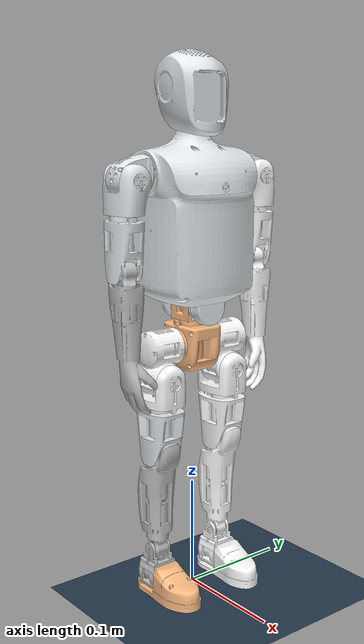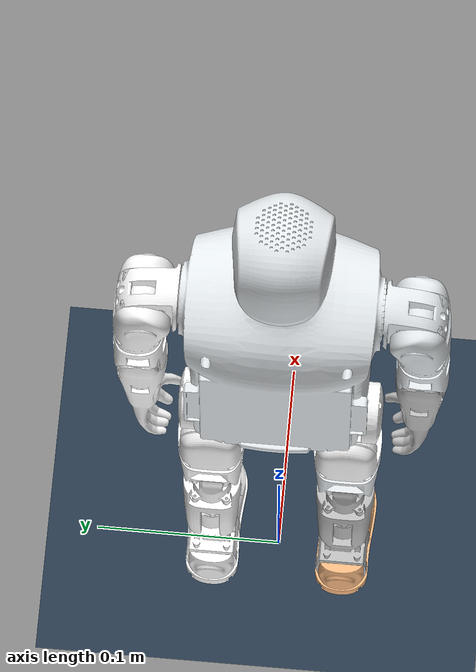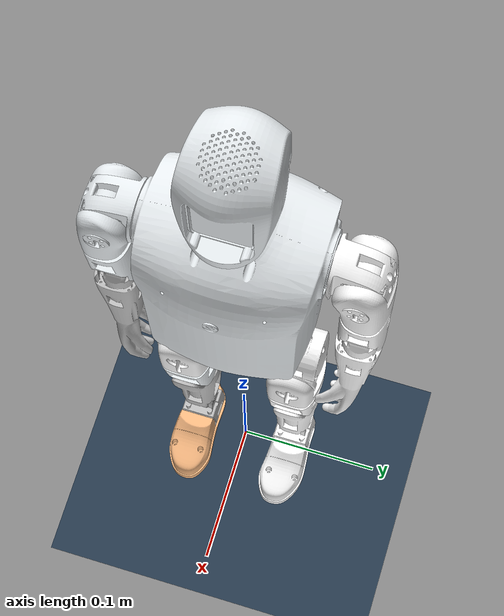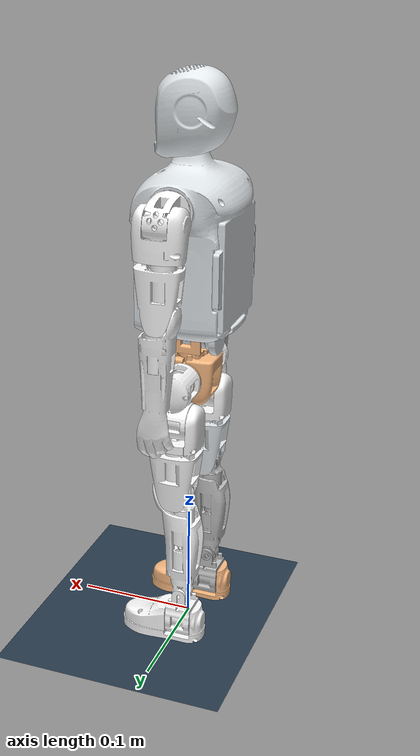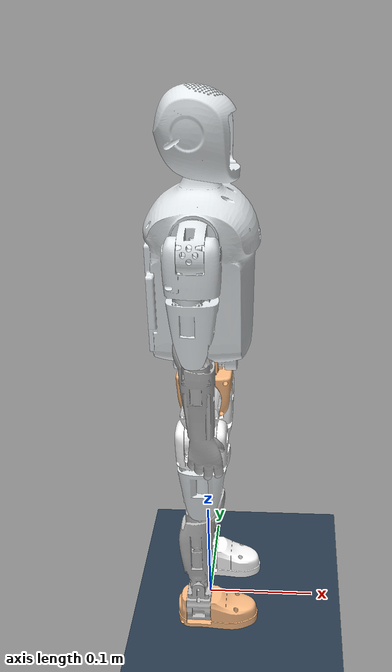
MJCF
<mujoco model="g0_mujoco">
    <compiler angle="radian" autolimits="true" eulerseq="zyx"/>
    <option timestep='0.002' iterations='50' solver='PGS' gravity='0 0 -9.81'>
    <flag frictionloss="enable"/>
    </option>
    <size njmax="500" nconmax="100" />

    <visual>
        <quality shadowsize='4096'/>
        <map znear='0.05'/>
    </visual>
    <default>
        <joint limited='true'/>
        <motor ctrllimited='true'/>
        <geom  condim='4' contype="2" conaffinity="1" solref='0.02 1' friction='0.9 0.2 0.2'/>
        <equality solref='0.02 1'/>
        <default class='joint_param'>
            <joint  damping="0.0002" frictionloss="0.001" armature="0.0015"/>
        </default>
    </default>
  <statistic meansize="0.164352" extent="1.07561" center="-0.00820016 -1.48012e-05 -0.160784"/>

  <asset>
    <texture name="texplane" type="2d" builtin="checker" rgb1="0.2 0.3 0.4" rgb2="0.1 0.15 0.2" width="512" height="512"/>
    <material name="matplane" texture="texplane" texrepeat="1 1" texuniform="true" reflectance="0.2"/>
    <mesh name="base_link" content_type="model/stl" file="/home/lz/g0_robot_lab/g0_robot_lab/source/g0_robot_lab/g0_robot_lab/assets/robots/g0/meshes/base_link.STL"/>
    <mesh name="waist_yaw_link" content_type="model/stl" file="/home/lz/g0_robot_lab/g0_robot_lab/source/g0_robot_lab/g0_robot_lab/assets/robots/g0/meshes/waist_yaw_link.STL"/>
    <mesh name="torso_link" content_type="model/stl" file="/home/lz/g0_robot_lab/g0_robot_lab/source/g0_robot_lab/g0_robot_lab/assets/robots/g0/meshes/torso_link.STL"/>
    <mesh name="l_shoulder_pitch_link" content_type="model/stl" file="/home/lz/g0_robot_lab/g0_robot_lab/source/g0_robot_lab/g0_robot_lab/assets/robots/g0/meshes/l_shoulder_pitch_link.STL"/>
    <mesh name="l_shoulder_roll_link" content_type="model/stl" file="/home/lz/g0_robot_lab/g0_robot_lab/source/g0_robot_lab/g0_robot_lab/assets/robots/g0/meshes/l_shoulder_roll_link.STL"/>
    <mesh name="l_shoulder_yaw_link" content_type="model/stl" file="/home/lz/g0_robot_lab/g0_robot_lab/source/g0_robot_lab/g0_robot_lab/assets/robots/g0/meshes/l_shoulder_yaw_link.STL"/>
    <mesh name="l_forearm_link" content_type="model/stl" file="/home/lz/g0_robot_lab/g0_robot_lab/source/g0_robot_lab/g0_robot_lab/assets/robots/g0/meshes/l_forearm_link.STL"/>
    <mesh name="r_shoulder_pitch_link" content_type="model/stl" file="/home/lz/g0_robot_lab/g0_robot_lab/source/g0_robot_lab/g0_robot_lab/assets/robots/g0/meshes/r_shoulder_pitch_link.STL"/>
    <mesh name="r_shoulder_roll_link" content_type="model/stl" file="/home/lz/g0_robot_lab/g0_robot_lab/source/g0_robot_lab/g0_robot_lab/assets/robots/g0/meshes/r_shoulder_roll_link.STL"/>
    <mesh name="r_shoulder_yaw_link" content_type="model/stl" file="/home/lz/g0_robot_lab/g0_robot_lab/source/g0_robot_lab/g0_robot_lab/assets/robots/g0/meshes/r_shoulder_yaw_link.STL"/>
    <mesh name="r_forearm_link" content_type="model/stl" file="/home/lz/g0_robot_lab/g0_robot_lab/source/g0_robot_lab/g0_robot_lab/assets/robots/g0/meshes/r_forearm_link.STL"/>
    <mesh name="l_hip_pitch_link" content_type="model/stl" file="/home/lz/g0_robot_lab/g0_robot_lab/source/g0_robot_lab/g0_robot_lab/assets/robots/g0/meshes/l_hip_pitch_link.STL"/>
    <mesh name="l_hip_roll_link" content_type="model/stl" file="/home/lz/g0_robot_lab/g0_robot_lab/source/g0_robot_lab/g0_robot_lab/assets/robots/g0/meshes/l_hip_roll_link.STL"/>
    <mesh name="l_thigh_link" content_type="model/stl" file="/home/lz/g0_robot_lab/g0_robot_lab/source/g0_robot_lab/g0_robot_lab/assets/robots/g0/meshes/l_thigh_link.STL"/>
    <mesh name="l_calf_link" content_type="model/stl" file="/home/lz/g0_robot_lab/g0_robot_lab/source/g0_robot_lab/g0_robot_lab/assets/robots/g0/meshes/l_calf_link.STL"/>
    <mesh name="l_ankle_pitch_link" content_type="model/stl" file="/home/lz/g0_robot_lab/g0_robot_lab/source/g0_robot_lab/g0_robot_lab/assets/robots/g0/meshes/l_ankle_pitch_link.STL"/>
    <mesh name="l_foot_link" content_type="model/stl" file="/home/lz/g0_robot_lab/g0_robot_lab/source/g0_robot_lab/g0_robot_lab/assets/robots/g0/meshes/l_foot_link.STL"/>
    <mesh name="r_hip_pitch_link" content_type="model/stl" file="/home/lz/g0_robot_lab/g0_robot_lab/source/g0_robot_lab/g0_robot_lab/assets/robots/g0/meshes/r_hip_pitch_link.STL"/>
    <mesh name="r_hip_roll_link" content_type="model/stl" file="/home/lz/g0_robot_lab/g0_robot_lab/source/g0_robot_lab/g0_robot_lab/assets/robots/g0/meshes/r_hip_roll_link.STL"/>
    <mesh name="r_thigh_link" content_type="model/stl" file="/home/lz/g0_robot_lab/g0_robot_lab/source/g0_robot_lab/g0_robot_lab/assets/robots/g0/meshes/r_thigh_link.STL"/>
    <mesh name="r_calf_link" content_type="model/stl" file="/home/lz/g0_robot_lab/g0_robot_lab/source/g0_robot_lab/g0_robot_lab/assets/robots/g0/meshes/r_calf_link.STL"/>
    <mesh name="r_ankle_pitch_link" content_type="model/stl" file="/home/lz/g0_robot_lab/g0_robot_lab/source/g0_robot_lab/g0_robot_lab/assets/robots/g0/meshes/r_ankle_pitch_link.STL"/>
    <mesh name="r_foot_link" content_type="model/stl" file="/home/lz/g0_robot_lab/g0_robot_lab/source/g0_robot_lab/g0_robot_lab/assets/robots/g0/meshes/r_foot_link.STL"/>
  </asset>

  <worldbody>
    <light directional="true" diffuse=".4 .4 .4" specular="0.1 0.1 0.1" pos="0 0 5.0" dir="0 0 -1" castshadow="false"/>
    <light directional="true" diffuse=".6 .6 .6" specular="0.2 0.2 0.2" pos="0 0 4" dir="0 0 -1"/>
    <geom name="ground" type="plane" size="0 0 1" pos="0.001 0 0" quat="1 0 0 0" material="matplane" condim="1" contype="1" conaffinity="2"/>
    <body name="base_link" pos='0 0 0.233'>
      <inertial pos="-1.2518e-05 0.00025287 -0.0020895" quat="0.502505 0.497486 0.497248 0.502734" mass="0.033536" diaginertia="1.1303e-05 6.75499e-06 5.91031e-06"/>
      <joint name="floating_base_joint" type="free"/>
      <site name='imu' size='0.01' pos='0.0 0 0.0' quat='1 0 0 0'/>
      <geom type="mesh" rgba="0.98824 0.73725 0.51765 1" mesh="base_link"/>
      <body name="waist_yaw_link">
        <inertial pos="3.1706e-05 -7.3869e-07 0.0065459" quat="0.999999 0.000574413 0.000872276 0.000145392" mass="0.035286" diaginertia="4.65161e-06 4.4014e-06 2.32349e-06"/>
        <joint name="waist_yaw_joint" pos="0 0 0" axis="0 0 1" limited="true" range="-1.2 1.2" class="joint_param" actuatorfrclimited="true" actuatorfrcrange="-2 2"/>
        <geom type="mesh" contype="0" conaffinity="0" group="1" density="0" rgba="0.98824 0.73725 0.51765 1" mesh="waist_yaw_link"/>
        <geom type="mesh" rgba="0.98824 0.73725 0.51765 1" mesh="waist_yaw_link"/>
        <body name="torso_link" pos="0.01995 -1.3874e-05 0.033929">
          <inertial pos="-0.024893 -2.0775e-05 0.072618" quat="0.999893 0.00500982 0.0137285 -0.000315872" mass="0.50948" diaginertia="0.000634052 0.000401479 0.000313429"/>
          <joint name="waist_roll_joint" pos="0 0 0" axis="1 0 0" limited="true" range="-0.5 0.5" class="joint_param" actuatorfrclimited="true" actuatorfrcrange="-2 2"/>
          <geom type="mesh" contype="0" conaffinity="0" group="1" density="0" rgba="0.89804 0.91765 0.92941 1" mesh="torso_link"/>
          <geom type="mesh" rgba="0.89804 0.91765 0.92941 1" mesh="torso_link"/>
          <body name="l_shoulder_pitch_link" pos="-0.019982 0.049803 0.11706">
            <inertial pos="0.00010002 -0.011181 -0.00021086" quat="0.688632 0.725095 0.00371701 -0.00294441" mass="0.037971" diaginertia="5.23075e-06 4.74163e-06 2.72023e-06"/>
            <joint name="l_shoulder_pitch_joint" pos="0 0 0" axis="0 1 0" limited="true" range="-1.2 1.2" class="joint_param" actuatorfrclimited="true" actuatorfrcrange="-2 2"/>
            <geom type="mesh" contype="0" conaffinity="0" group="1" density="0" rgba="1 1 1 1" mesh="l_shoulder_pitch_link"/>
            <geom type="mesh" rgba="1 1 1 1" mesh="l_shoulder_pitch_link"/>
            <body name="l_shoulder_roll_link" pos="0.017974 0.018741 -0.0053332">
              <inertial pos="-0.017467 0.0007259 -0.0047307" quat="0.472894 0.480229 0.642921 0.363874" mass="0.046789" diaginertia="6.6731e-06 5.99448e-06 4.15802e-06"/>
              <joint name="l_shoulder_roll_joint" pos="0 0 0" axis="1 0 0" limited="true" range="0 1.2" class="joint_param" actuatorfrclimited="true" actuatorfrcrange="-2 2"/>
              <geom type="mesh" contype="0" conaffinity="0" group="1" density="0" rgba="1 1 1 1" mesh="l_shoulder_roll_link"/>
              <geom type="mesh" rgba="1 1 1 1" mesh="l_shoulder_roll_link"/>
              <body name="l_shoulder_yaw_link" pos="-0.020466 0.0030129 -0.023567">
                <inertial pos="0.00139018 5.66678e-05 -0.0213976" quat="0.68793 -0.0260079 -0.0233469 0.724935" mass="0.0424984" diaginertia="6.90285e-06 6.65682e-06 3.64122e-06"/>
                <joint name="l_shoulder_yaw_joint" pos="0 0 0" axis="0 0 1" limited="true" range="-1.2 1.2" class="joint_param" actuatorfrclimited="true" actuatorfrcrange="-2 2"/>
                <geom type="mesh" contype="0" conaffinity="0" group="1" density="0" rgba="1 1 1 1" mesh="l_shoulder_yaw_link"/>
                <geom type="mesh" rgba="1 1 1 1" mesh="l_shoulder_yaw_link"/>
                <body name="l_forearm_link" pos="0.00450103 -0.00929168 -0.05105">
                  <inertial pos="0.00093881 0.008898 -0.054115" quat="0.626362 0.0722765 0.0506894 0.774518" mass="0.030632" diaginertia="1.1154e-05 1.05719e-05 2.3749e-06"/>
                  <joint name="l_elbow_pitch_joint" pos="0 0 0" axis="0 1 0" limited="true" range="-1.2 0" class="joint_param" armature="0.002041666667" actuatorfrclimited="true" actuatorfrcrange="-2 2"/>
                  <geom type="mesh" contype="0" conaffinity="0" group="1" density="0" rgba="1 1 1 1" mesh="l_forearm_link"/>
                  <geom type="mesh" rgba="1 1 1 1" mesh="l_forearm_link"/>
                </body>
              </body>
            </body>
          </body>
          <body name="r_shoulder_pitch_link" pos="-0.0199821 -0.0497753 0.117056">
            <inertial pos="0.00010006 0.0111805 -0.000210872" quat="0.725096 0.688632 0.00295105 -0.00372069" mass="0.037971" diaginertia="5.23079e-06 4.74164e-06 2.72019e-06"/>
            <joint name="r_shoulder_pitch_joint" pos="0 0 0" axis="0 1 0" limited="true" range="-1.2 1.2" class="joint_param" actuatorfrclimited="true" actuatorfrcrange="-2 2"/>
            <geom type="mesh" contype="0" conaffinity="0" group="1" density="0" rgba="0.898039 0.917647 0.929412 1" mesh="r_shoulder_pitch_link"/>
            <geom type="mesh" rgba="0.898039 0.917647 0.929412 1" mesh="r_shoulder_pitch_link"/>
            <body name="r_shoulder_roll_link" pos="0.017974 -0.018741 -0.0053332">
              <inertial pos="-0.0176331 -0.00192776 -0.0130575" quat="0.702081 0.712054 -0.00516146 0.00585193" mass="0.0467895" diaginertia="1.78921e-05 1.73927e-05 3.06014e-06"/>
              <joint name="r_shoulder_roll_joint" pos="0 0 0" axis="1 0 0" limited="true" range="-1.2 0" class="joint_param" actuatorfrclimited="true" actuatorfrcrange="-2 2"/>
              <geom type="mesh" contype="0" conaffinity="0" group="1" density="0" rgba="0.898039 0.917647 0.929412 1" mesh="r_shoulder_roll_link"/>
              <geom type="mesh" rgba="0.898039 0.917647 0.929412 1" mesh="r_shoulder_roll_link"/>
              <body name="r_shoulder_yaw_link" pos="-0.0204659 -0.00301291 -0.0235668">
                <inertial pos="0.00138989 -5.65824e-05 -0.0213978" quat="0.725129 -0.0233298 -0.0260358 0.687725" mass="0.0424982" diaginertia="6.90281e-06 6.65681e-06 3.64111e-06"/>
                <joint name="r_shoulder_yaw_joint" pos="0 0 0" axis="0 0 1" limited="true" range="-1.2 1.2" class="joint_param" actuatorfrclimited="true" actuatorfrcrange="-2 2"/>
                <geom type="mesh" contype="0" conaffinity="0" group="1" density="0" rgba="0.898039 0.917647 0.929412 1" mesh="r_shoulder_yaw_link"/>
                <geom type="mesh" rgba="0.898039 0.917647 0.929412 1" mesh="r_shoulder_yaw_link"/>
                <body name="r_forearm_link" pos="0.00450103 0.00929168 -0.05105">
                  <inertial pos="0.00093988 -0.00889177 -0.0541355" quat="0.774115 0.0510365 0.072163 0.626844" mass="0.0306133" diaginertia="1.11406e-05 1.05587e-05 2.37236e-06"/>
                  <joint name="r_elbow_pitch_joint" pos="0 0 0" axis="0 1 0" limited="true" range="-1.2 0" class="joint_param" armature="0.002041666667" actuatorfrclimited="true" actuatorfrcrange="-2 2"/>
                  <geom type="mesh" contype="0" conaffinity="0" group="1" density="0" rgba="0.74902 0.74902 0.74902 1" mesh="r_forearm_link"/>
                  <geom type="mesh" rgba="0.74902 0.74902 0.74902 1" mesh="r_forearm_link"/>
                </body>
              </body>
            </body>
          </body>
        </body>
      </body>
      <body name="l_hip_pitch_link" pos="1.3872e-05 0.014 0">
        <inertial pos="-4.56498e-05 0.0193263 -0.00376131" quat="0.98905 -0.147542 -0.00342316 -0.000679719" mass="0.0438357" diaginertia="8.03396e-06 6.01219e-06 5.76833e-06"/>
        <joint name="l_hip_pitch_joint" pos="0 0 0" axis="0 1 0" limited="true" range="-0.75 0.75" class="joint_param" actuatorfrclimited="true" actuatorfrcrange="-2 2"/>
        <geom type="mesh" contype="0" conaffinity="0" group="1" density="0" rgba="1 1 1 1" mesh="l_hip_pitch_link"/>
        <geom type="mesh" rgba="1 1 1 1" mesh="l_hip_pitch_link"/>
        <body name="l_hip_roll_link" pos="0.0170347 0.0216861 -0.0279057">
          <inertial pos="-0.0176846 -2.84231e-05 -0.00397011" quat="0.393019 0.604511 0.517437 0.460827" mass="0.0461629" diaginertia="6.36355e-06 6.33007e-06 4.49578e-06"/>
          <joint name="l_hip_roll_joint" pos="0 0 0" axis="1 0 0" limited="true" range="0 0.75" class="joint_param" actuatorfrclimited="true" actuatorfrcrange="-2 2"/>
          <geom type="mesh" contype="0" conaffinity="0" group="1" density="0" rgba="1 1 1 1" mesh="l_hip_roll_link"/>
          <geom type="mesh" rgba="1 1 1 1" mesh="l_hip_roll_link"/>
          <body name="l_thigh_link" pos="-0.0170476 0 -0.019999">
            <inertial pos="-0.000626328 2.99418e-05 -0.0221115" quat="0.984329 0.00230086 0.00938868 0.176079" mass="0.0500162" diaginertia="9.28203e-06 9.25472e-06 6.11223e-06"/>
            <joint name="l_hip_yaw_joint" pos="0 0 0" axis="0 0 1" limited="true" range="-1 1" class="joint_param" actuatorfrclimited="true" actuatorfrcrange="-2 2"/>
            <geom type="mesh" contype="0" conaffinity="0" group="1" density="0" rgba="1 1 1 1" mesh="l_thigh_link"/>
            <geom type="mesh" rgba="1 1 1 1" mesh="l_thigh_link"/>
            <body name="l_calf_link" pos="-0.00680103 -0.00973613 -0.0488892">
              <inertial pos="0.0021546 0.00959408 -0.0383603" quat="0.657143 -0.140212 -0.125723 0.729862" mass="0.0287721" diaginertia="1.19847e-05 1.19213e-05 3.45579e-06"/>
              <joint name="l_knee_pitch_joint" pos="0 0 0" axis="0 1 0" limited="true" range="0 0.75" class="joint_param" armature="0.002041666667" actuatorfrclimited="true" actuatorfrcrange="-2 2"/>
              <geom type="mesh" contype="0" conaffinity="0" group="1" density="0" rgba="1 1 1 1" mesh="l_calf_link"/>
              <geom type="mesh" rgba="1 1 1 1" mesh="l_calf_link"/>
              <body name="l_ankle_pitch_link" pos="0 0 -0.0944">
                <inertial pos="0.00172316 0.00976531 -0.0244489" quat="0.621139 0.337522 0.62151 0.337625" mass="0.0350557" diaginertia="4.24166e-06 4.23009e-06 2.34957e-06"/>
                <joint name="l_ankle_pitch_joint" pos="0 0 0" axis="0 1 0" limited="true" range="-0.75 0.75" class="joint_param" armature="0.002041666667" actuatorfrclimited="true" actuatorfrcrange="-2 2"/>
                <geom type="mesh" contype="0" conaffinity="0" group="1" density="0" rgba="1 1 1 1" mesh="l_ankle_pitch_link"/>
                <geom type="mesh" rgba="1 1 1 1" mesh="l_ankle_pitch_link"/>
                <body name="l_foot_link" pos="0.01945 0.00973613 -0.0255876">
                  <inertial pos="0.0048048 7.44073e-05 -0.00685214" quat="0.0166638 0.657291 0.0622233 0.750879" mass="0.0269172" diaginertia="5.37784e-06 4.79764e-06 3.07308e-06"/>
                  <joint name="l_ankle_roll_joint" pos="0 0 0" axis="1 0 0" limited="true" range="-0.75 0.75" class="joint_param" actuatorfrclimited="true" actuatorfrcrange="-2 2"/>
                  <geom type="mesh" contype="0" conaffinity="0" group="1" density="0" rgba="1 1 1 1" mesh="l_foot_link"/>
                  <geom type="mesh" rgba="1 1 1 1" mesh="l_foot_link"/>
                </body>
              </body>
            </body>
          </body>
        </body>
      </body>
      <body name="r_hip_pitch_link" pos="1.38715e-05 -0.014 0">
        <inertial pos="-4.5873e-05 -0.019326 -0.0037613" quat="0.989055 0.147503 -0.00342111 0.000701893" mass="0.043836" diaginertia="8.03391e-06 6.01216e-06 5.76833e-06"/>
        <joint name="r_hip_pitch_joint" pos="0 0 0" axis="0 1 0" limited="true" range="-0.75 0.75" class="joint_param" actuatorfrclimited="true" actuatorfrcrange="-2 2"/>
        <geom type="mesh" contype="0" conaffinity="0" group="1" density="0" rgba="1 1 1 1" mesh="r_hip_pitch_link"/>
        <geom type="mesh" rgba="1 1 1 1" mesh="r_hip_pitch_link"/>
        <body name="r_hip_roll_link" pos="0.0170347 -0.0216861 -0.0279057">
          <inertial pos="-0.0176844 2.85775e-05 -0.0039696" quat="0.460158 0.518432 0.603724 0.393701" mass="0.0461658" diaginertia="6.36463e-06 6.33033e-06 4.49661e-06"/>
          <joint name="r_hip_roll_joint" pos="0 0 0" axis="1 0 0" limited="true" range="-0.75 0" class="joint_param" actuatorfrclimited="true" actuatorfrcrange="-2 2"/>
          <geom type="mesh" contype="0" conaffinity="0" group="1" density="0" rgba="1 1 1 1" mesh="r_hip_roll_link"/>
          <geom type="mesh" rgba="1 1 1 1" mesh="r_hip_roll_link"/>
          <body name="r_thigh_link" pos="-0.0170476 0 -0.019999">
            <inertial pos="-0.000627664 -3.06691e-05 -0.0221801" quat="0.983256 -0.00236556 0.00942301 -0.181969" mass="0.0498744" diaginertia="9.28008e-06 9.25155e-06 6.10729e-06"/>
            <joint name="r_hip_yaw_joint" pos="0 0 0" axis="0 0 1" limited="true" range="-1 1" class="joint_param" actuatorfrclimited="true" actuatorfrcrange="-2 2"/>
            <geom type="mesh" contype="0" conaffinity="0" group="1" density="0" rgba="0.898039 0.917647 0.929412 1" mesh="r_thigh_link"/>
            <geom type="mesh" rgba="0.898039 0.917647 0.929412 1" mesh="r_thigh_link"/>
            <body name="r_calf_link" pos="-0.00680103 0.00973613 -0.0488892">
              <inertial pos="0.00215323 -0.0095924 -0.0383605" quat="0.726703 -0.126403 -0.139615 0.66063" mass="0.0287769" diaginertia="1.19854e-05 1.19222e-05 3.45706e-06"/>
              <joint name="r_knee_pitch_joint" pos="0 0 0" axis="0 1 0" limited="true" range="0 0.75" class="joint_param" armature="0.002041666667" actuatorfrclimited="true" actuatorfrcrange="-2 2"/>
              <geom type="mesh" contype="0" conaffinity="0" group="1" density="0" rgba="0.74902 0.74902 0.74902 1" mesh="r_calf_link"/>
              <geom type="mesh" rgba="0.74902 0.74902 0.74902 1" mesh="r_calf_link"/>
              <body name="r_ankle_pitch_link" pos="0 0 -0.0944">
                <inertial pos="0.00172316 -0.0097653 -0.0244489" quat="0.337619 0.621513 0.337516 0.621142" mass="0.0350557" diaginertia="4.24166e-06 4.23009e-06 2.34957e-06"/>
                <joint name="r_ankle_pitch_joint" pos="0 0 0" axis="0 1 0" limited="true" range="-0.75 0.75" class="joint_param" armature="0.002041666667" actuatorfrclimited="true" actuatorfrcrange="-2 2"/>
                <geom type="mesh" contype="0" conaffinity="0" group="1" density="0" rgba="0.74902 0.74902 0.74902 1" mesh="r_ankle_pitch_link"/>
                <geom type="mesh" rgba="0.74902 0.74902 0.74902 1" mesh="r_ankle_pitch_link"/>
                <body name="r_foot_link" pos="0.01945 -0.00973613 -0.0255876">
                  <inertial pos="0.0048049 -7.47975e-05 -0.00685149" quat="-0.0166667 0.657263 -0.0622963 0.750897" mass="0.0269181" diaginertia="5.37796e-06 4.79762e-06 3.07354e-06"/>
                  <joint name="r_ankle_roll_joint" pos="0 0 0" axis="1 0 0" limited="true" range="-0.75 0.75" class="joint_param" actuatorfrclimited="true" actuatorfrcrange="-2 2"/>
                  <geom type="mesh" contype="0" conaffinity="0" group="1" density="0" rgba="0.988235 0.737255 0.517647 1" mesh="r_foot_link"/>
                  <geom type="mesh" rgba="0.988235 0.737255 0.517647 1" mesh="r_foot_link"/>
                </body>
              </body>
            </body>
          </body>
        </body>
      </body>
    </body>
  </worldbody>
  <actuator>
    <motor name="waist_yaw_motor" joint="waist_yaw_joint" gear="1" ctrllimited="true" ctrlrange="-0.5 0.5" />
    <motor name="waist_roll_motor" joint="waist_roll_joint" gear="1" ctrllimited="true" ctrlrange="-0.5 0.5" />
    <motor name="l_shoulder_pitch_motor" joint="l_shoulder_pitch_joint" gear="1" ctrllimited="true" ctrlrange="-0.5 0.5" />
    <motor name="l_shoulder_roll_motor" joint="l_shoulder_roll_joint" gear="1" ctrllimited="true" ctrlrange="-0.5 0.5" />
    <motor name="l_shoulder_yaw_motor" joint="l_shoulder_yaw_joint" gear="1" ctrllimited="true" ctrlrange="-0.5 0.5" />
    <motor name="l_elbow_pitch_motor" joint="l_elbow_pitch_joint" gear="1" ctrllimited="true" ctrlrange="-0.5833333333 0.5833333333" />
    <motor name="r_shoulder_pitch_motor" joint="r_shoulder_pitch_joint" gear="1" ctrllimited="true" ctrlrange="-0.5 0.5" />
    <motor name="r_shoulder_roll_motor" joint="r_shoulder_roll_joint" gear="1" ctrllimited="true" ctrlrange="-0.5 0.5" />
    <motor name="r_shoulder_yaw_motor" joint="r_shoulder_yaw_joint" gear="1" ctrllimited="true" ctrlrange="-0.5 0.5" />
    <motor name="r_elbow_pitch_motor" joint="r_elbow_pitch_joint" gear="1" ctrllimited="true" ctrlrange="-0.5833333333 0.5833333333" />
    <motor name="l_hip_pitch_motor" joint="l_hip_pitch_joint" gear="1" ctrllimited="true" ctrlrange="-0.5 0.5" />
    <motor name="l_hip_roll_motor" joint="l_hip_roll_joint" gear="1" ctrllimited="true" ctrlrange="-0.5 0.5" />
    <motor name="l_hip_yaw_motor" joint="l_hip_yaw_joint" gear="1" ctrllimited="true" ctrlrange="-0.5 0.5" />
    <motor name="l_knee_pitch_motor" joint="l_knee_pitch_joint" gear="1" ctrllimited="true" ctrlrange="-0.5833333333 0.5833333333" />
    <motor name="l_ankle_pitch_motor" joint="l_ankle_pitch_joint" gear="1" ctrllimited="true" ctrlrange="-0.5833333333 0.5833333333" />
    <motor name="l_ankle_roll_motor" joint="l_ankle_roll_joint" gear="1" ctrllimited="true" ctrlrange="-0.5 0.5" />
    <motor name="r_hip_pitch_motor" joint="r_hip_pitch_joint" gear="1" ctrllimited="true" ctrlrange="-0.5 0.5" />
    <motor name="r_hip_roll_motor" joint="r_hip_roll_joint" gear="1" ctrllimited="true" ctrlrange="-0.5 0.5" />
    <motor name="r_hip_yaw_motor" joint="r_hip_yaw_joint" gear="1" ctrllimited="true" ctrlrange="-0.5 0.5" />
    <motor name="r_knee_pitch_motor" joint="r_knee_pitch_joint" gear="1" ctrllimited="true" ctrlrange="-0.5833333333 0.5833333333" />
    <motor name="r_ankle_pitch_motor" joint="r_ankle_pitch_joint" gear="1" ctrllimited="true" ctrlrange="-0.5833333333 0.5833333333" />
    <motor name="r_ankle_roll_motor" joint="r_ankle_roll_joint" gear="1" ctrllimited="true" ctrlrange="-0.5 0.5" />
  </actuator>

  <keyframe>
    <key name="zero_pose" qpos="0 0 0.23 1 0 0 0 0 0 0 0 0 0 0 0 0 0 0 0 0 0 0 0 0 0 0 0 0 0" />
    <key name="default_stand" qpos="0 0 0.23 1 0 0 0 0 0 0.3 0.25 0 -0.97 0.3 -0.25 0 -0.97 -0.2 0 0 0.34 -0.14 0 -0.2 0 0 0.34 -0.14 0" />
    <key name="suspended_stand" qpos="0 0 0.5 1 0 0 0 0 0 0.3 0.25 0 -0.97 0.3 -0.25 0 -0.97 -0.2 0 0 0.34 -0.14 0 -0.2 0 0 0.34 -0.14 0" />
  </keyframe>
</mujoco>
